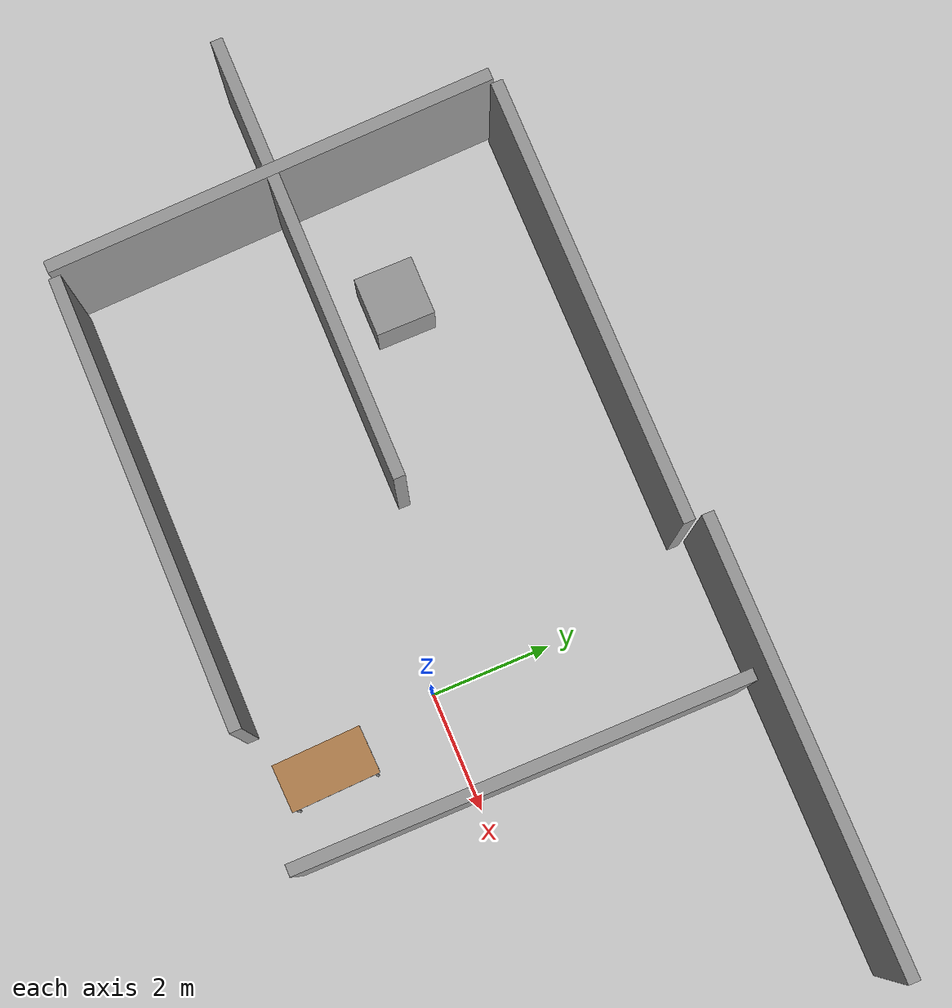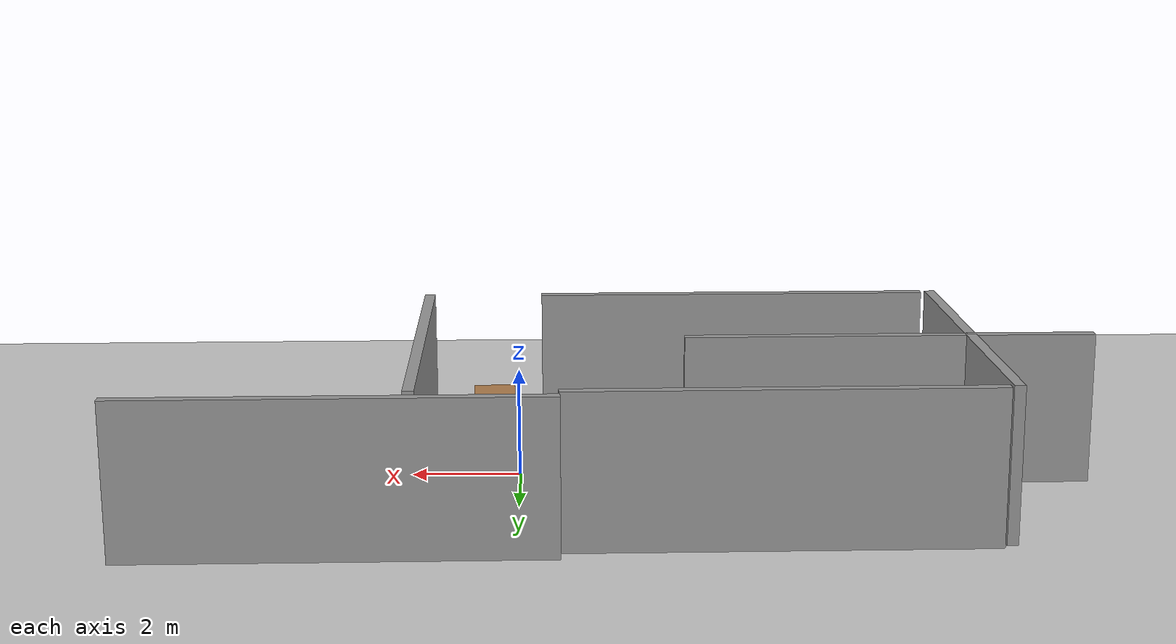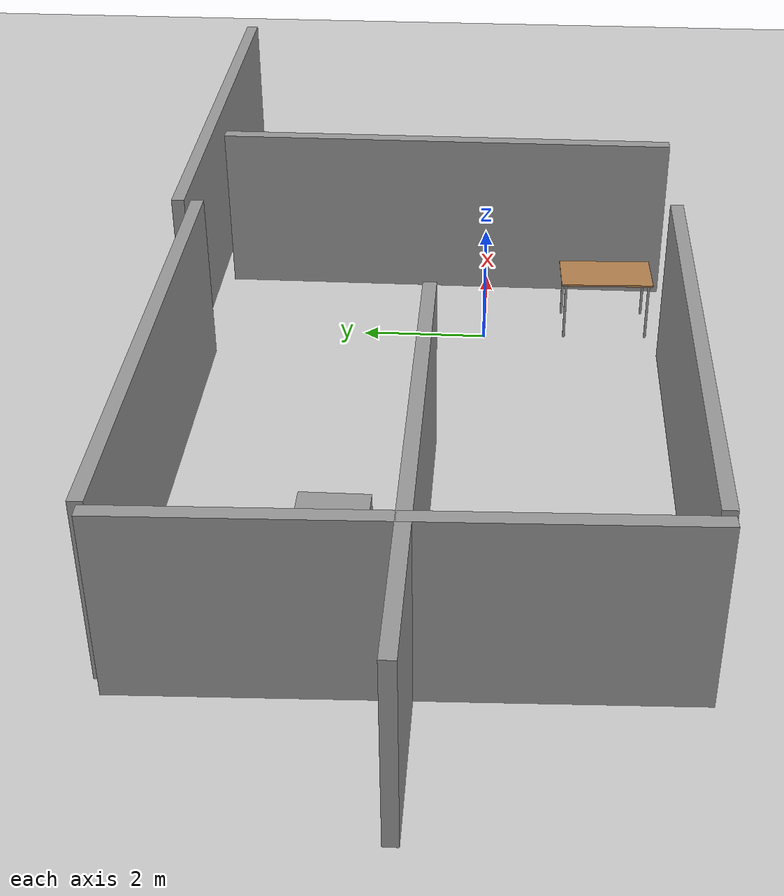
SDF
<sdf version="1.6">
 <world name="default">
  <light name="sun" type="directional">
   <pose>0 0 10 0 -0 0</pose>
   <diffuse>0.8 0.8 0.8 1</diffuse>
   <specular>0.2 0.2 0.2 1</specular>
   <attenuation>
    <range>1000</range>
    <constant>0.9</constant>
    <linear>0.01</linear>
    <quadratic>0.001</quadratic>
   </attenuation>
   <direction>-0.5 0.1 -0.9</direction>
  </light>
  <light name="user_point_light_0" type="point">
   <cast_shadows>0</cast_shadows>
   <pose>-11.6 -10 1 0 -0 0</pose>
   <diffuse>0.5 0.5 0.5 1</diffuse>
   <specular>0.1 0.1 0.1 1</specular>
   <attenuation>
    <range>20</range>
    <constant>0.5</constant>
    <linear>0.01</linear>
    <quadratic>0</quadratic>
   </attenuation>
   <direction>0 0 -1</direction>
  </light>
  <light name="user_point_light_1" type="point">
   <cast_shadows>0</cast_shadows>
   <pose>-2 15 1 0 -0 0</pose>
   <diffuse>0.5 0.5 0.5 1</diffuse>
   <specular>0.1 0.1 0.1 1</specular>
   <attenuation>
    <range>20</range>
    <constant>0.5</constant>
    <linear>0.01</linear>
    <quadratic>0</quadratic>
   </attenuation>
   <direction>0 0 -1</direction>
  </light>
  <model name="ground_plane">
   <static>1</static>
   <link name="link">
    <collision name="collision">
     <geometry><plane><normal>0 0 1</normal><size>100 100</size></plane></geometry>
     <surface><friction><ode><mu>100</mu><mu2>50</mu2></ode></friction></surface>
    </collision>
    <visual name="visual">
     <cast_shadows>0</cast_shadows>
     <geometry><plane><normal>0 0 1</normal><size>100 100</size></plane></geometry>
     <material>
      <script><uri>file://media/materials/scripts/gazebo.material</uri><name>Gazebo/Grey</name></script>
     </material>
    </visual>
    <velocity_decay><linear>0</linear><angular>0</angular></velocity_decay>
   </link>
  </model>
  <physics name="default_physics" default="0" type="ode">
   <max_step_size>0.001</max_step_size>
   <real_time_factor>1</real_time_factor>
   <real_time_update_rate>1000</real_time_update_rate>
  </physics>
  <scene><ambient>0.4 0.4 0.4 1</ambient><background>0.7 0.7 0.7 1</background><shadows>1</shadows></scene>
  <spherical_coordinates>
   <surface_model>EARTH_WGS84</surface_model>
   <latitude_deg>0</latitude_deg>
   <longitude_deg>0</longitude_deg>
   <elevation>0</elevation>
   <heading_deg>0</heading_deg>
  </spherical_coordinates>
  <model name="grey_wall">
   <static>1</static>
   <link name="link">
    <pose>0 0 1.4 0 -0 0</pose>
    <collision name="collision"><geometry><box><size>7.5 0.2 2.8</size></box></geometry></collision>
    <visual name="visual">
     <cast_shadows>0</cast_shadows>
     <geometry><box><size>7.5 0.2 2.8</size></box></geometry>
     <material>
      <script>
       <uri>model://grey_wall/materials/scripts</uri>
       <uri>model://grey_wall/materials/textures</uri>
       <name>vrc/grey_wall</name>
      </script>
     </material>
    </visual>
    <velocity_decay><linear>0</linear><angular>0</angular></velocity_decay>
   </link>
   <pose>-4.45669 4.51369 0 0 -0 0</pose>
  </model>
  <model name="grey_wall_0">
   <static>1</static>
   <link name="link">
    <pose>0 0 1.4 0 -0 0</pose>
    <collision name="collision"><geometry><box><size>7.5 0.2 2.8</size></box></geometry></collision>
    <visual name="visual">
     <cast_shadows>0</cast_shadows>
     <geometry><box><size>7.5 0.2 2.8</size></box></geometry>
     <material>
      <script>
       <uri>model://grey_wall/materials/scripts</uri>
       <uri>model://grey_wall/materials/textures</uri>
       <name>vrc/grey_wall</name>
      </script>
     </material>
    </visual>
    <velocity_decay><linear>0</linear><angular>0</angular></velocity_decay>
   </link>
   <pose>-4.17438 -2.94975 0 0 -0 0</pose>
  </model>
  <model name="grey_wall_1">
   <static>1</static>
   <link name="link">
    <pose>0 0 1.4 0 -0 0</pose>
    <collision name="collision"><geometry><box><size>7.5 0.2 2.8</size></box></geometry></collision>
    <visual name="visual">
     <cast_shadows>0</cast_shadows>
     <geometry><box><size>7.5 0.2 2.8</size></box></geometry>
     <material>
      <script>
       <uri>model://grey_wall/materials/scripts</uri>
       <uri>model://grey_wall/materials/textures</uri>
       <name>vrc/grey_wall</name>
      </script>
     </material>
    </visual>
    <velocity_decay><linear>0</linear><angular>0</angular></velocity_decay>
   </link>
   <pose>-8.24091 0.730795 0 0 0 -1.53854</pose>
  </model>
  <model name="grey_wall_3">
   <static>1</static>
   <link name="link">
    <pose>0 0 1.4 0 -0 0</pose>
    <collision name="collision"><geometry><box><size>7.5 0.2 2.8</size></box></geometry></collision>
    <visual name="visual">
     <cast_shadows>0</cast_shadows>
     <geometry><box><size>7.5 0.2 2.8</size></box></geometry>
     <material>
      <script>
       <uri>model://grey_wall/materials/scripts</uri>
       <uri>model://grey_wall/materials/textures</uri>
       <name>vrc/grey_wall</name>
      </script>
     </material>
    </visual>
    <velocity_decay><linear>0</linear><angular>0</angular></velocity_decay>
   </link>
   <pose>1.76758 0.74778 0.00212 0 0 -1.57102</pose>
  </model>
  <model name="grey_wall_6">
   <static>1</static>
   <link name="link">
    <pose>0 0 1.4 0 -0 0</pose>
    <collision name="collision"><geometry><box><size>7.5 0.2 2.8</size></box></geometry></collision>
    <visual name="visual">
     <cast_shadows>0</cast_shadows>
     <geometry><box><size>7.5 0.2 2.8</size></box></geometry>
     <material>
      <script>
       <uri>model://grey_wall/materials/scripts</uri>
       <uri>model://grey_wall/materials/textures</uri>
       <name>vrc/grey_wall</name>
      </script>
     </material>
    </visual>
    <velocity_decay><linear>0</linear><angular>0</angular></velocity_decay>
   </link>
   <pose>3.02125 4.81927 0 0 -0 0</pose>
  </model>
  <model name="table">
   <static>1</static>
   <link name="link">
    <collision name="surface">
     <pose>0 0 1 0 -0 0</pose>
     <geometry><box><size>1.5 0.8 0.03</size></box></geometry>
     <surface><friction><ode><mu>0.6</mu><mu2>0.6</mu2></ode></friction></surface>
    </collision>
    <visual name="visual1">
     <pose>0 0 1 0 -0 0</pose>
     <geometry><box><size>1.5 0.8 0.03</size></box></geometry>
     <material>
      <script><uri>file://media/materials/scripts/gazebo.material</uri><name>Gazebo/Wood</name></script>
     </material>
    </visual>
    <collision name="front_left_leg">
     <pose>0.68 0.38 0.5 0 -0 0</pose>
     <geometry><cylinder><radius>0.02</radius><length>1</length></cylinder></geometry>
    </collision>
    <visual name="front_left_leg">
     <pose>0.68 0.38 0.5 0 -0 0</pose>
     <geometry><cylinder><radius>0.02</radius><length>1</length></cylinder></geometry>
     <material>
      <script><uri>file://media/materials/scripts/gazebo.material</uri><name>Gazebo/Grey</name></script>
     </material>
    </visual>
    <collision name="front_right_leg">
     <pose>0.68 -0.38 0.5 0 -0 0</pose>
     <geometry><cylinder><radius>0.02</radius><length>1</length></cylinder></geometry>
    </collision>
    <visual name="front_right_leg">
     <pose>0.68 -0.38 0.5 0 -0 0</pose>
     <geometry><cylinder><radius>0.02</radius><length>1</length></cylinder></geometry>
     <material>
      <script><uri>file://media/materials/scripts/gazebo.material</uri><name>Gazebo/Grey</name></script>
     </material>
    </visual>
    <collision name="back_right_leg">
     <pose>-0.68 -0.38 0.5 0 -0 0</pose>
     <geometry><cylinder><radius>0.02</radius><length>1</length></cylinder></geometry>
    </collision>
    <visual name="back_right_leg">
     <pose>-0.68 -0.38 0.5 0 -0 0</pose>
     <geometry><cylinder><radius>0.02</radius><length>1</length></cylinder></geometry>
     <material>
      <script><uri>file://media/materials/scripts/gazebo.material</uri><name>Gazebo/Grey</name></script>
     </material>
    </visual>
    <collision name="back_left_leg">
     <pose>-0.68 0.38 0.5 0 -0 0</pose>
     <geometry><cylinder><radius>0.02</radius><length>1</length></cylinder></geometry>
    </collision>
    <visual name="back_left_leg">
     <pose>-0.68 0.38 0.5 0 -0 0</pose>
     <geometry><cylinder><radius>0.02</radius><length>1</length></cylinder></geometry>
     <material>
      <script><uri>file://media/materials/scripts/gazebo.material</uri><name>Gazebo/Grey</name></script>
     </material>
    </visual>
    <velocity_decay><linear>0</linear><angular>0</angular></velocity_decay>
   </link>
   <pose>0.5 -2 0 0 0 -1.53468</pose>
  </model>
  <gravity>0 0 -9.8</gravity>
  <magnetic_field>6e-06 2.3e-05 -4.2e-05</magnetic_field>
  <atmosphere type="adiabatic"/>
  <model name="grey_wall_2">
   <static>1</static>
   <link name="link">
    <pose>0 0 1.4 0 -0 0</pose>
    <collision name="collision"><geometry><box><size>7.5 0.2 2.8</size></box></geometry></collision>
    <visual name="visual">
     <cast_shadows>0</cast_shadows>
     <geometry><box><size>7.5 0.2 2.8</size></box></geometry>
     <material>
      <script>
       <uri>model://grey_wall/materials/scripts</uri>
       <uri>model://grey_wall/materials/textures</uri>
       <name>vrc/grey_wall</name>
      </script>
     </material>
    </visual>
   </link>
   <pose>-6.76485 0.742786 0 0 -0 0</pose>
  </model>
  <model name="unit_box_0">
   <pose>-6.10631 1.86757 0.499995 -1e-05 0 0</pose>
   <link name="link">
    <inertial>
     <mass>1</mass>
     <inertia>
      <ixx>0.166667</ixx>
      <ixy>0</ixy>
      <ixz>0</ixz>
      <iyy>0.166667</iyy>
      <iyz>0</iyz>
      <izz>0.166667</izz>
     </inertia>
    </inertial>
    <collision name="collision"><geometry><box><size>1 1 1</size></box></geometry></collision>
    <visual name="visual">
     <geometry><box><size>1 1 1</size></box></geometry>
     <material>
      <script><name>Gazebo/Grey</name><uri>file://media/materials/scripts/gazebo.material</uri></script>
     </material>
    </visual>
   </link>
  </model>
 </world>
</sdf>
